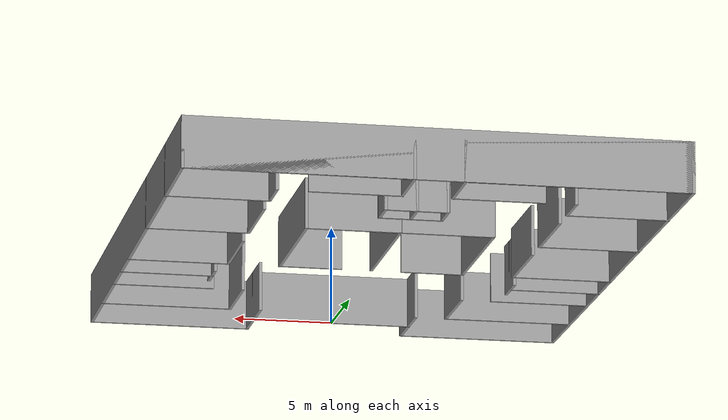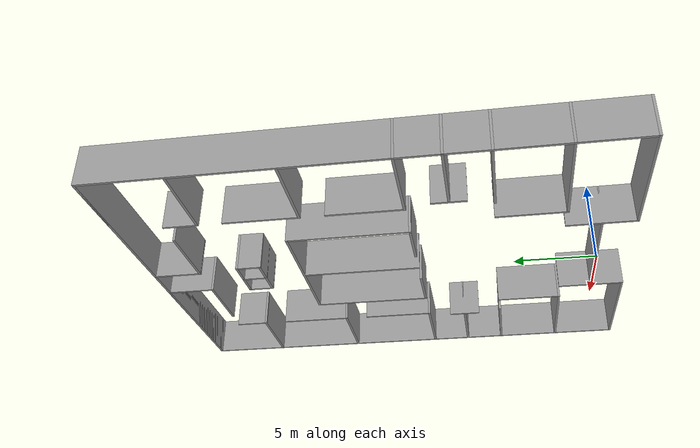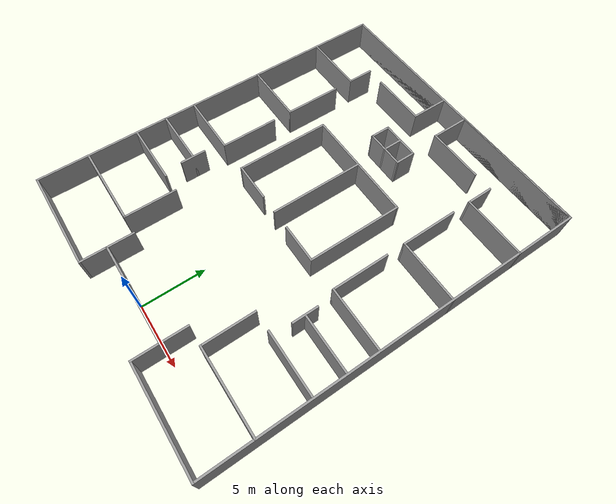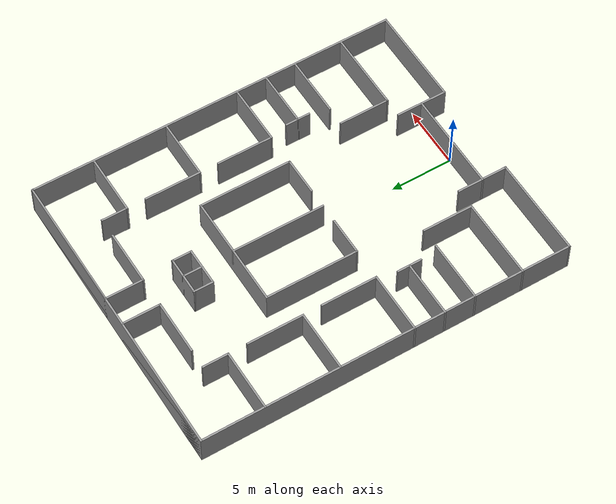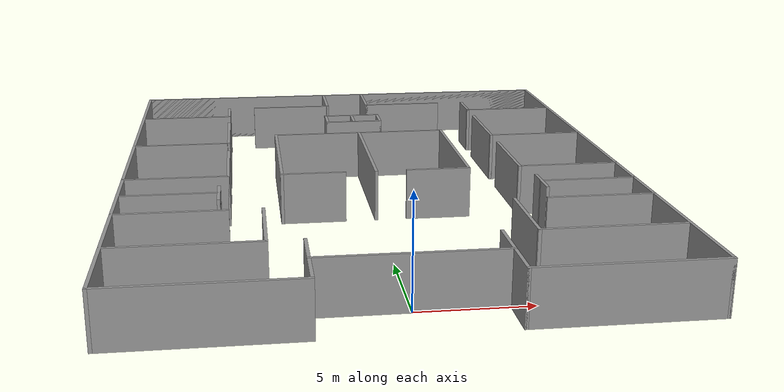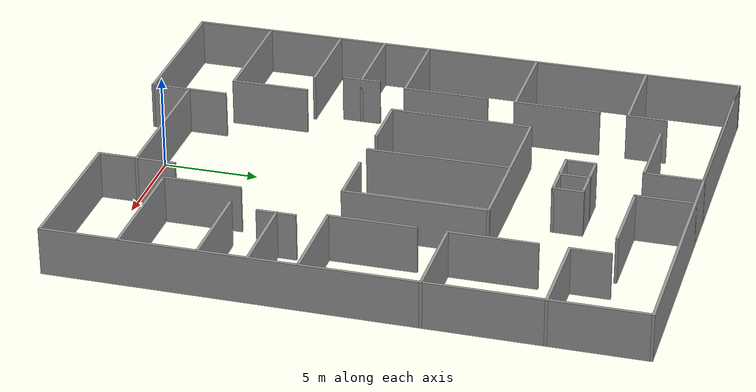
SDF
<?xml version='1.0'?>
<sdf version='1.6'>
  <model name='hospital_03'>
    <pose frame=''>0 13 0 0 -0 0</pose>
    <link name='Wall_1'>
      <collision name='Wall_1_Collision'>
        <geometry>
          <box>
            <size>8.15 0.15 2.5</size>
          </box>
        </geometry>
        <pose frame=''>0 0 1.25 0 -0 0</pose>
      </collision>
      <visual name='Wall_1_Visual'>
        <pose frame=''>0 0 1.25 0 -0 0</pose>
        <geometry>
          <box>
            <size>8.15 0.15 2.5</size>
          </box>
        </geometry>
        <material>
          <script>
            <uri>file://media/materials/scripts/gazebo.material</uri>
            <name>Gazebo/Grey</name>
          </script>
          <ambient>1 1 1 1</ambient>
        </material>
        <meta>
          <layer>0</layer>
        </meta>
      </visual>
      <pose frame=''>0 -13 0 0 -0 0</pose>
    </link>
    <link name='Wall_100'>
      <collision name='Wall_100_Collision'>
        <geometry>
          <box>
            <size>3.15 0.15 2.5</size>
          </box>
        </geometry>
        <pose frame=''>0 0 1.25 0 -0 0</pose>
      </collision>
      <visual name='Wall_100_Visual'>
        <pose frame=''>0 0 1.25 0 -0 0</pose>
        <geometry>
          <box>
            <size>3.15 0.15 2.5</size>
          </box>
        </geometry>
        <material>
          <script>
            <uri>file://media/materials/scripts/gazebo.material</uri>
            <name>Gazebo/Grey</name>
          </script>
          <ambient>1 1 1 1</ambient>
        </material>
        <meta>
          <layer>0</layer>
        </meta>
      </visual>
      <pose frame=''>-3.05 -2 0 0 -0 3.14159</pose>
    </link>
    <link name='Wall_102'>
      <collision name='Wall_102_Collision'>
        <geometry>
          <box>
            <size>7.55 0.15 2.5</size>
          </box>
        </geometry>
        <pose frame=''>0 0 1.25 0 -0 0</pose>
      </collision>
      <visual name='Wall_102_Visual'>
        <pose frame=''>0 0 1.25 0 -0 0</pose>
        <geometry>
          <box>
            <size>7.55 0.15 2.5</size>
          </box>
        </geometry>
        <material>
          <script>
            <uri>file://media/materials/scripts/gazebo.material</uri>
            <name>Gazebo/Grey</name>
          </script>
          <ambient>1 1 1 1</ambient>
        </material>
        <meta>
          <layer>0</layer>
        </meta>
      </visual>
      <pose frame=''>0 1.7 0 0 -0 -1.5708</pose>
    </link>
    <link name='Wall_104'>
      <collision name='Wall_104_Collision'>
        <geometry>
          <box>
            <size>3.15 0.15 2.5</size>
          </box>
        </geometry>
        <pose frame=''>0 0 1.25 0 -0 0</pose>
      </collision>
      <visual name='Wall_104_Visual'>
        <pose frame=''>0 0 1.25 0 -0 0</pose>
        <geometry>
          <box>
            <size>3.15 0.15 2.5</size>
          </box>
        </geometry>
        <material>
          <script>
            <uri>file://media/materials/scripts/gazebo.material</uri>
            <name>Gazebo/Grey</name>
          </script>
          <ambient>1 1 1 1</ambient>
        </material>
        <meta>
          <layer>0</layer>
        </meta>
      </visual>
      <pose frame=''>3.05 -2 0 0 -0 3.14159</pose>
    </link>
    <link name='Wall_106'>
      <collision name='Wall_106_Collision'>
        <geometry>
          <box>
            <size>3.15 0.15 2.5</size>
          </box>
        </geometry>
        <pose frame=''>0 0 1.25 0 -0 0</pose>
      </collision>
      <visual name='Wall_106_Visual'>
        <pose frame=''>0 0 1.25 0 -0 0</pose>
        <geometry>
          <box>
            <size>3.15 0.15 2.5</size>
          </box>
        </geometry>
        <material>
          <script>
            <uri>file://media/materials/scripts/gazebo.material</uri>
            <name>Gazebo/Grey</name>
          </script>
          <ambient>1 1 1 1</ambient>
        </material>
        <meta>
          <layer>0</layer>
        </meta>
      </visual>
      <pose frame=''>0 9.45 0 0 -0 0</pose>
    </link>
    <link name='Wall_108'>
      <collision name='Wall_108_Collision'>
        <geometry>
          <box>
            <size>1.65 0.15 2.5</size>
          </box>
        </geometry>
        <pose frame=''>0 0 1.25 0 -0 0</pose>
      </collision>
      <visual name='Wall_108_Visual'>
        <pose frame=''>0 0 1.25 0 -0 0</pose>
        <geometry>
          <box>
            <size>1.65 0.15 2.5</size>
          </box>
        </geometry>
        <material>
          <script>
            <uri>file://media/materials/scripts/gazebo.material</uri>
            <name>Gazebo/Grey</name>
          </script>
          <ambient>1 1 1 1</ambient>
        </material>
        <meta>
          <layer>0</layer>
        </meta>
      </visual>
      <pose frame=''>-1.5 8.7 0 0 -0 -1.5708</pose>
    </link>
    <link name='Wall_11'>
      <collision name='Wall_11_Collision'>
        <geometry>
          <box>
            <size>4.15 0.15 2.5</size>
          </box>
        </geometry>
        <pose frame=''>0 0 1.25 0 -0 0</pose>
      </collision>
      <visual name='Wall_11_Visual'>
        <pose frame=''>0 0 1.25 0 -0 0</pose>
        <geometry>
          <box>
            <size>4.15 0.15 2.5</size>
          </box>
        </geometry>
        <material>
          <script>
            <uri>file://media/materials/scripts/gazebo.material</uri>
            <name>Gazebo/Grey</name>
          </script>
          <ambient>1 1 1 1</ambient>
        </material>
        <meta>
          <layer>0</layer>
        </meta>
      </visual>
      <pose frame=''>-5.55 -9 0 0 -0 1.5708</pose>
    </link>
    <link name='Wall_110'>
      <collision name='Wall_110_Collision'>
        <geometry>
          <box>
            <size>1.65 0.15 2.5</size>
          </box>
        </geometry>
        <pose frame=''>0 0 1.25 0 -0 0</pose>
      </collision>
      <visual name='Wall_110_Visual'>
        <pose frame=''>0 0 1.25 0 -0 0</pose>
        <geometry>
          <box>
            <size>1.65 0.15 2.5</size>
          </box>
        </geometry>
        <material>
          <script>
            <uri>file://media/materials/scripts/gazebo.material</uri>
            <name>Gazebo/Grey</name>
          </script>
          <ambient>1 1 1 1</ambient>
        </material>
        <meta>
          <layer>0</layer>
        </meta>
      </visual>
      <pose frame=''>1.5 8.7 0 0 -0 -1.5708</pose>
    </link>
    <link name='Wall_112'>
      <collision name='Wall_112_Collision'>
        <geometry>
          <box>
            <size>3.15 0.15 2.5</size>
          </box>
        </geometry>
        <pose frame=''>0 0 1.25 0 -0 0</pose>
      </collision>
      <visual name='Wall_112_Visual'>
        <pose frame=''>0 0 1.25 0 -0 0</pose>
        <geometry>
          <box>
            <size>3.15 0.15 2.5</size>
          </box>
        </geometry>
        <material>
          <script>
            <uri>file://media/materials/scripts/gazebo.material</uri>
            <name>Gazebo/Grey</name>
          </script>
          <ambient>1 1 1 1</ambient>
        </material>
        <meta>
          <layer>0</layer>
        </meta>
      </visual>
      <pose frame=''>0 7.95 0 0 -0 0</pose>
    </link>
    <link name='Wall_114'>
      <collision name='Wall_114_Collision'>
        <geometry>
          <box>
            <size>1.65 0.15 2.5</size>
          </box>
        </geometry>
        <pose frame=''>0 0 1.25 0 -0 0</pose>
      </collision>
      <visual name='Wall_114_Visual'>
        <pose frame=''>0 0 1.25 0 -0 0</pose>
        <geometry>
          <box>
            <size>1.65 0.15 2.5</size>
          </box>
        </geometry>
        <material>
          <script>
            <uri>file://media/materials/scripts/gazebo.material</uri>
            <name>Gazebo/Grey</name>
          </script>
          <ambient>1 1 1 1</ambient>
        </material>
        <meta>
          <layer>0</layer>
        </meta>
      </visual>
      <pose frame=''>0 8.7 0 0 -0 -1.5708</pose>
    </link>
    <link name='Wall_120'>
      <collision name='Wall_120_Collision'>
        <geometry>
          <box>
            <size>24.15 0.15 2.5</size>
          </box>
        </geometry>
        <pose frame=''>0 0 1.25 0 -0 0</pose>
      </collision>
      <visual name='Wall_120_Visual'>
        <pose frame=''>0 0 1.25 0 -0 0</pose>
        <geometry>
          <box>
            <size>24.15 0.15 2.5</size>
          </box>
        </geometry>
        <material>
          <script>
            <uri>file://media/materials/scripts/gazebo.material</uri>
            <name>Gazebo/Grey</name>
          </script>
          <ambient>1 1 1 1</ambient>
        </material>
        <meta>
          <layer>0</layer>
        </meta>
      </visual>
      <pose frame=''>0 15 0 0 -0 0</pose>
    </link>
    <link name='Wall_13'>
      <collision name='Wall_13_Collision'>
        <geometry>
          <box>
            <size>5.05 0.15 2.5</size>
          </box>
        </geometry>
        <pose frame=''>0 0 1.25 0 -0 0</pose>
      </collision>
      <visual name='Wall_13_Visual'>
        <pose frame=''>0 0 1.25 0 -0 0</pose>
        <geometry>
          <box>
            <size>5.05 0.15 2.5</size>
          </box>
        </geometry>
        <material>
          <script>
            <uri>file://media/materials/scripts/gazebo.material</uri>
            <name>Gazebo/Grey</name>
          </script>
          <ambient>1 1 1 1</ambient>
        </material>
        <meta>
          <layer>0</layer>
        </meta>
      </visual>
      <pose frame=''>-9.55 -7 0 0 -0 3.14159</pose>
    </link>
    <link name='Wall_17'>
      <collision name='Wall_17_Collision'>
        <geometry>
          <box>
            <size>2.05 0.15 2.5</size>
          </box>
        </geometry>
        <pose frame=''>0 0 1.25 0 -0 0</pose>
      </collision>
      <visual name='Wall_17_Visual'>
        <pose frame=''>0 0 1.25 0 -0 0</pose>
        <geometry>
          <box>
            <size>2.05 0.15 2.5</size>
          </box>
        </geometry>
        <material>
          <script>
            <uri>file://media/materials/scripts/gazebo.material</uri>
            <name>Gazebo/Grey</name>
          </script>
          <ambient>1 1 1 1</ambient>
        </material>
        <meta>
          <layer>0</layer>
        </meta>
      </visual>
      <pose frame=''>-7.5 -4.5 0 0 -0 1.5708</pose>
    </link>
    <link name='Wall_21'>
      <collision name='Wall_21_Collision'>
        <geometry>
          <box>
            <size>4.65 0.15 2.5</size>
          </box>
        </geometry>
        <pose frame=''>0 0 1.25 0 -0 0</pose>
      </collision>
      <visual name='Wall_21_Visual'>
        <pose frame=''>0 0 1.25 0 -0 0</pose>
        <geometry>
          <box>
            <size>4.65 0.15 2.5</size>
          </box>
        </geometry>
        <material>
          <script>
            <uri>file://media/materials/scripts/gazebo.material</uri>
            <name>Gazebo/Grey</name>
          </script>
          <ambient>1 1 1 1</ambient>
        </material>
        <meta>
          <layer>0</layer>
        </meta>
      </visual>
      <pose frame=''>-9.75 -4.5 0 0 -0 0</pose>
    </link>
    <link name='Wall_23'>
      <collision name='Wall_23_Collision'>
        <geometry>
          <box>
            <size>5.05 0.15 2.5</size>
          </box>
        </geometry>
        <pose frame=''>0 0 1.25 0 -0 0</pose>
      </collision>
      <visual name='Wall_23_Visual'>
        <pose frame=''>0 0 1.25 0 -0 0</pose>
        <geometry>
          <box>
            <size>5.05 0.15 2.5</size>
          </box>
        </geometry>
        <material>
          <script>
            <uri>file://media/materials/scripts/gazebo.material</uri>
            <name>Gazebo/Grey</name>
          </script>
          <ambient>1 1 1 1</ambient>
        </material>
        <meta>
          <layer>0</layer>
        </meta>
      </visual>
      <pose frame=''>-9.55 -2 0 0 -0 0</pose>
    </link>
    <link name='Wall_27'>
      <collision name='Wall_27_Collision'>
        <geometry>
          <box>
            <size>4.6 0.15 2.5</size>
          </box>
        </geometry>
        <pose frame=''>0 0 1.25 0 -0 0</pose>
      </collision>
      <visual name='Wall_27_Visual'>
        <pose frame=''>0 0 1.25 0 -0 0</pose>
        <geometry>
          <box>
            <size>4.6 0.15 2.5</size>
          </box>
        </geometry>
        <material>
          <script>
            <uri>file://media/materials/scripts/gazebo.material</uri>
            <name>Gazebo/Grey</name>
          </script>
          <ambient>1 1 1 1</ambient>
        </material>
        <meta>
          <layer>0</layer>
        </meta>
      </visual>
      <pose frame=''>-7.1 0.225001 0 0 -0 1.5708</pose>
    </link>
    <link name='Wall_29'>
      <collision name='Wall_29_Collision'>
        <geometry>
          <box>
            <size>5.05 0.15 2.5</size>
          </box>
        </geometry>
        <pose frame=''>0 0 1.25 0 -0 0</pose>
      </collision>
      <visual name='Wall_29_Visual'>
        <pose frame=''>0 0 1.25 0 -0 0</pose>
        <geometry>
          <box>
            <size>5.05 0.15 2.5</size>
          </box>
        </geometry>
        <material>
          <script>
            <uri>file://media/materials/scripts/gazebo.material</uri>
            <name>Gazebo/Grey</name>
          </script>
          <ambient>1 1 1 1</ambient>
        </material>
        <meta>
          <layer>0</layer>
        </meta>
      </visual>
      <pose frame=''>-9.55 4 0 0 -0 0</pose>
    </link>
    <link name='Wall_3'>
      <collision name='Wall_3_Collision'>
        <geometry>
          <box>
            <size>4.15 0.15 2.5</size>
          </box>
        </geometry>
        <pose frame=''>0 0 1.25 0 -0 0</pose>
      </collision>
      <visual name='Wall_3_Visual'>
        <pose frame=''>0 0 1.25 0 -0 0</pose>
        <geometry>
          <box>
            <size>4.15 0.15 2.5</size>
          </box>
        </geometry>
        <material>
          <script>
            <uri>file://media/materials/scripts/gazebo.material</uri>
            <name>Gazebo/Grey</name>
          </script>
          <ambient>1 1 1 1</ambient>
        </material>
        <meta>
          <layer>0</layer>
        </meta>
      </visual>
      <pose frame=''>-4 -13 0 0 -0 -1.5708</pose>
    </link>
    <link name='Wall_31'>
      <collision name='Wall_31_Collision'>
        <geometry>
          <box>
            <size>4.6 0.15 2.5</size>
          </box>
        </geometry>
        <pose frame=''>0 0 1.25 0 -0 0</pose>
      </collision>
      <visual name='Wall_31_Visual'>
        <pose frame=''>0 0 1.25 0 -0 0</pose>
        <geometry>
          <box>
            <size>4.6 0.15 2.5</size>
          </box>
        </geometry>
        <material>
          <script>
            <uri>file://media/materials/scripts/gazebo.material</uri>
            <name>Gazebo/Grey</name>
          </script>
          <ambient>1 1 1 1</ambient>
        </material>
        <meta>
          <layer>0</layer>
        </meta>
      </visual>
      <pose frame=''>-7.1 6.225 0 0 -0 1.5708</pose>
    </link>
    <link name='Wall_33'>
      <collision name='Wall_33_Collision'>
        <geometry>
          <box>
            <size>5.05 0.15 2.5</size>
          </box>
        </geometry>
        <pose frame=''>0 0 1.25 0 -0 0</pose>
      </collision>
      <visual name='Wall_33_Visual'>
        <pose frame=''>0 0 1.25 0 -0 0</pose>
        <geometry>
          <box>
            <size>5.05 0.15 2.5</size>
          </box>
        </geometry>
        <material>
          <script>
            <uri>file://media/materials/scripts/gazebo.material</uri>
            <name>Gazebo/Grey</name>
          </script>
          <ambient>1 1 1 1</ambient>
        </material>
        <meta>
          <layer>0</layer>
        </meta>
      </visual>
      <pose frame=''>-9.55 10 0 0 -0 0</pose>
    </link>
    <link name='Wall_37'>
      <collision name='Wall_37_Collision'>
        <geometry>
          <box>
            <size>2.15 0.15 2.5</size>
          </box>
        </geometry>
        <pose frame=''>0 0 1.25 0 -0 0</pose>
      </collision>
      <visual name='Wall_37_Visual'>
        <pose frame=''>0 0 1.25 0 -0 0</pose>
        <geometry>
          <box>
            <size>2.15 0.15 2.5</size>
          </box>
        </geometry>
        <material>
          <script>
            <uri>file://media/materials/scripts/gazebo.material</uri>
            <name>Gazebo/Grey</name>
          </script>
          <ambient>1 1 1 1</ambient>
        </material>
        <meta>
          <layer>0</layer>
        </meta>
      </visual>
      <pose frame=''>-7.1 11 0 0 -0 1.5708</pose>
    </link>
    <link name='Wall_43'>
      <collision name='Wall_43_Collision'>
        <geometry>
          <box>
            <size>30.15 0.15 2.5</size>
          </box>
        </geometry>
        <pose frame=''>0 0 1.25 0 -0 0</pose>
      </collision>
      <visual name='Wall_43_Visual'>
        <pose frame=''>0 0 1.25 0 -0 0</pose>
        <geometry>
          <box>
            <size>30.15 0.15 2.5</size>
          </box>
        </geometry>
        <material>
          <script>
            <uri>file://media/materials/scripts/gazebo.material</uri>
            <name>Gazebo/Grey</name>
          </script>
          <ambient>1 1 1 1</ambient>
        </material>
        <meta>
          <layer>0</layer>
        </meta>
      </visual>
      <pose frame=''>-12 0 0 0 -0 1.5708</pose>
    </link>
    <link name='Wall_49'>
      <collision name='Wall_49_Collision'>
        <geometry>
          <box>
            <size>4.5 0.15 2.5</size>
          </box>
        </geometry>
        <pose frame=''>0 0 1.25 0 -0 0</pose>
      </collision>
      <visual name='Wall_49_Visual'>
        <pose frame=''>0 0 1.25 0 -0 0</pose>
        <geometry>
          <box>
            <size>4.5 0.15 2.5</size>
          </box>
        </geometry>
        <material>
          <script>
            <uri>file://media/materials/scripts/gazebo.material</uri>
            <name>Gazebo/Grey</name>
          </script>
          <ambient>1 1 1 1</ambient>
        </material>
        <meta>
          <layer>0</layer>
        </meta>
      </visual>
      <pose frame=''>-3.375 12 0 0 -0 0</pose>
    </link>
    <link name='Wall_5'>
      <collision name='Wall_5_Collision'>
        <geometry>
          <box>
            <size>8.15 0.15 2.5</size>
          </box>
        </geometry>
        <pose frame=''>0 0 1.25 0 -0 0</pose>
      </collision>
      <visual name='Wall_5_Visual'>
        <pose frame=''>0 0 1.25 0 -0 0</pose>
        <geometry>
          <box>
            <size>8.15 0.15 2.5</size>
          </box>
        </geometry>
        <material>
          <script>
            <uri>file://media/materials/scripts/gazebo.material</uri>
            <name>Gazebo/Grey</name>
          </script>
          <ambient>1 1 1 1</ambient>
        </material>
        <meta>
          <layer>0</layer>
        </meta>
      </visual>
      <pose frame=''>-8 -15 0 0 -0 3.14159</pose>
    </link>
    <link name='Wall_51'>
      <collision name='Wall_51_Collision'>
        <geometry>
          <box>
            <size>4.5 0.15 2.5</size>
          </box>
        </geometry>
        <pose frame=''>0 0 1.25 0 -0 0</pose>
      </collision>
      <visual name='Wall_51_Visual'>
        <pose frame=''>0 0 1.25 0 -0 0</pose>
        <geometry>
          <box>
            <size>4.5 0.15 2.5</size>
          </box>
        </geometry>
        <material>
          <script>
            <uri>file://media/materials/scripts/gazebo.material</uri>
            <name>Gazebo/Grey</name>
          </script>
          <ambient>1 1 1 1</ambient>
        </material>
        <meta>
          <layer>0</layer>
        </meta>
      </visual>
      <pose frame=''>3.375 12 0 0 -0 0</pose>
    </link>
    <link name='Wall_58'>
      <collision name='Wall_58_Collision'>
        <geometry>
          <box>
            <size>3.15 0.15 2.5</size>
          </box>
        </geometry>
        <pose frame=''>0 0 1.25 0 -0 0</pose>
      </collision>
      <visual name='Wall_58_Visual'>
        <pose frame=''>0 0 1.25 0 -0 0</pose>
        <geometry>
          <box>
            <size>3.15 0.15 2.5</size>
          </box>
        </geometry>
        <material>
          <script>
            <uri>file://media/materials/scripts/gazebo.material</uri>
            <name>Gazebo/Grey</name>
          </script>
          <ambient>1 1 1 1</ambient>
        </material>
        <meta>
          <layer>0</layer>
        </meta>
      </visual>
      <pose frame=''>-1.2 13.5 0 0 -0 1.5708</pose>
    </link>
    <link name='Wall_60'>
      <collision name='Wall_60_Collision'>
        <geometry>
          <box>
            <size>10.95 0.15 2.5</size>
          </box>
        </geometry>
        <pose frame=''>0 0 1.25 0 -0 0</pose>
      </collision>
      <visual name='Wall_60_Visual'>
        <pose frame=''>0 0 1.25 0 -0 0</pose>
        <geometry>
          <box>
            <size>10.95 0.15 2.5</size>
          </box>
        </geometry>
        <material>
          <script>
            <uri>file://media/materials/scripts/gazebo.material</uri>
            <name>Gazebo/Grey</name>
          </script>
          <ambient>1 1 1 1</ambient>
        </material>
        <meta>
          <layer>0</layer>
        </meta>
      </visual>
      <pose frame=''>-6.6 15 0 0 -0 0</pose>
    </link>
    <link name='Wall_62'>
      <collision name='Wall_62_Collision'>
        <geometry>
          <box>
            <size>4.15 0.15 2.5</size>
          </box>
        </geometry>
        <pose frame=''>0 0 1.25 0 -0 0</pose>
      </collision>
      <visual name='Wall_62_Visual'>
        <pose frame=''>0 0 1.25 0 -0 0</pose>
        <geometry>
          <box>
            <size>4.15 0.15 2.5</size>
          </box>
        </geometry>
        <material>
          <script>
            <uri>file://media/materials/scripts/gazebo.material</uri>
            <name>Gazebo/Grey</name>
          </script>
          <ambient>1 1 1 1</ambient>
        </material>
        <meta>
          <layer>0</layer>
        </meta>
      </visual>
      <pose frame=''>4 -13 0 0 -0 -1.5708</pose>
    </link>
    <link name='Wall_64'>
      <collision name='Wall_64_Collision'>
        <geometry>
          <box>
            <size>8.15 0.15 2.5</size>
          </box>
        </geometry>
        <pose frame=''>0 0 1.25 0 -0 0</pose>
      </collision>
      <visual name='Wall_64_Visual'>
        <pose frame=''>0 0 1.25 0 -0 0</pose>
        <geometry>
          <box>
            <size>8.15 0.15 2.5</size>
          </box>
        </geometry>
        <material>
          <script>
            <uri>file://media/materials/scripts/gazebo.material</uri>
            <name>Gazebo/Grey</name>
          </script>
          <ambient>1 1 1 1</ambient>
        </material>
        <meta>
          <layer>0</layer>
        </meta>
      </visual>
      <pose frame=''>8 -15 0 0 -0 0</pose>
    </link>
    <link name='Wall_66'>
      <collision name='Wall_66_Collision'>
        <geometry>
          <box>
            <size>30.15 0.15 2.5</size>
          </box>
        </geometry>
        <pose frame=''>0 0 1.25 0 -0 0</pose>
      </collision>
      <visual name='Wall_66_Visual'>
        <pose frame=''>0 0 1.25 0 -0 0</pose>
        <geometry>
          <box>
            <size>30.15 0.15 2.5</size>
          </box>
        </geometry>
        <material>
          <script>
            <uri>file://media/materials/scripts/gazebo.material</uri>
            <name>Gazebo/Grey</name>
          </script>
          <ambient>1 1 1 1</ambient>
        </material>
        <meta>
          <layer>0</layer>
        </meta>
      </visual>
      <pose frame=''>12 0 0 0 -0 1.5708</pose>
    </link>
    <link name='Wall_68'>
      <collision name='Wall_68_Collision'>
        <geometry>
          <box>
            <size>6.6 0.15 2.5</size>
          </box>
        </geometry>
        <pose frame=''>0 0 1.25 0 -0 0</pose>
      </collision>
      <visual name='Wall_68_Visual'>
        <pose frame=''>0 0 1.25 0 -0 0</pose>
        <geometry>
          <box>
            <size>6.6 0.15 2.5</size>
          </box>
        </geometry>
        <material>
          <script>
            <uri>file://media/materials/scripts/gazebo.material</uri>
            <name>Gazebo/Grey</name>
          </script>
          <ambient>1 1 1 1</ambient>
        </material>
        <meta>
          <layer>0</layer>
        </meta>
      </visual>
      <pose frame=''>8.775 -11 0 0 -0 0</pose>
    </link>
    <link name='Wall_7'>
      <collision name='Wall_7_Collision'>
        <geometry>
          <box>
            <size>6.6 0.15 2.5</size>
          </box>
        </geometry>
        <pose frame=''>0 0 1.25 0 -0 0</pose>
      </collision>
      <visual name='Wall_7_Visual'>
        <pose frame=''>0 0 1.25 0 -0 0</pose>
        <geometry>
          <box>
            <size>6.6 0.15 2.5</size>
          </box>
        </geometry>
        <material>
          <script>
            <uri>file://media/materials/scripts/gazebo.material</uri>
            <name>Gazebo/Grey</name>
          </script>
          <ambient>1 1 1 1</ambient>
        </material>
        <meta>
          <layer>0</layer>
        </meta>
      </visual>
      <pose frame=''>-8.775 -11 0 0 -0 3.14159</pose>
    </link>
    <link name='Wall_70'>
      <collision name='Wall_70_Collision'>
        <geometry>
          <box>
            <size>4.15 0.15 2.5</size>
          </box>
        </geometry>
        <pose frame=''>0 0 1.25 0 -0 0</pose>
      </collision>
      <visual name='Wall_70_Visual'>
        <pose frame=''>0 0 1.25 0 -0 0</pose>
        <geometry>
          <box>
            <size>4.15 0.15 2.5</size>
          </box>
        </geometry>
        <material>
          <script>
            <uri>file://media/materials/scripts/gazebo.material</uri>
            <name>Gazebo/Grey</name>
          </script>
          <ambient>1 1 1 1</ambient>
        </material>
        <meta>
          <layer>0</layer>
        </meta>
      </visual>
      <pose frame=''>5.55 -9 0 0 -0 1.5708</pose>
    </link>
    <link name='Wall_72'>
      <collision name='Wall_72_Collision'>
        <geometry>
          <box>
            <size>5.05 0.15 2.5</size>
          </box>
        </geometry>
        <pose frame=''>0 0 1.25 0 -0 0</pose>
      </collision>
      <visual name='Wall_72_Visual'>
        <pose frame=''>0 0 1.25 0 -0 0</pose>
        <geometry>
          <box>
            <size>5.05 0.15 2.5</size>
          </box>
        </geometry>
        <material>
          <script>
            <uri>file://media/materials/scripts/gazebo.material</uri>
            <name>Gazebo/Grey</name>
          </script>
          <ambient>1 1 1 1</ambient>
        </material>
        <meta>
          <layer>0</layer>
        </meta>
      </visual>
      <pose frame=''>9.55 -7 0 0 -0 0</pose>
    </link>
    <link name='Wall_74'>
      <collision name='Wall_74_Collision'>
        <geometry>
          <box>
            <size>2.05 0.15 2.5</size>
          </box>
        </geometry>
        <pose frame=''>0 0 1.25 0 -0 0</pose>
      </collision>
      <visual name='Wall_74_Visual'>
        <pose frame=''>0 0 1.25 0 -0 0</pose>
        <geometry>
          <box>
            <size>2.05 0.15 2.5</size>
          </box>
        </geometry>
        <material>
          <script>
            <uri>file://media/materials/scripts/gazebo.material</uri>
            <name>Gazebo/Grey</name>
          </script>
          <ambient>1 1 1 1</ambient>
        </material>
        <meta>
          <layer>0</layer>
        </meta>
      </visual>
      <pose frame=''>7.5 -4.5 0 0 -0 1.5708</pose>
    </link>
    <link name='Wall_76'>
      <collision name='Wall_76_Collision'>
        <geometry>
          <box>
            <size>4.65 0.15 2.5</size>
          </box>
        </geometry>
        <pose frame=''>0 0 1.25 0 -0 0</pose>
      </collision>
      <visual name='Wall_76_Visual'>
        <pose frame=''>0 0 1.25 0 -0 0</pose>
        <geometry>
          <box>
            <size>4.65 0.15 2.5</size>
          </box>
        </geometry>
        <material>
          <script>
            <uri>file://media/materials/scripts/gazebo.material</uri>
            <name>Gazebo/Grey</name>
          </script>
          <ambient>1 1 1 1</ambient>
        </material>
        <meta>
          <layer>0</layer>
        </meta>
      </visual>
      <pose frame=''>9.75 -4.5 0 0 -0 0</pose>
    </link>
    <link name='Wall_78'>
      <collision name='Wall_78_Collision'>
        <geometry>
          <box>
            <size>5.05 0.15 2.5</size>
          </box>
        </geometry>
        <pose frame=''>0 0 1.25 0 -0 0</pose>
      </collision>
      <visual name='Wall_78_Visual'>
        <pose frame=''>0 0 1.25 0 -0 0</pose>
        <geometry>
          <box>
            <size>5.05 0.15 2.5</size>
          </box>
        </geometry>
        <material>
          <script>
            <uri>file://media/materials/scripts/gazebo.material</uri>
            <name>Gazebo/Grey</name>
          </script>
          <ambient>1 1 1 1</ambient>
        </material>
        <meta>
          <layer>0</layer>
        </meta>
      </visual>
      <pose frame=''>9.55 -2 0 0 -0 0</pose>
    </link>
    <link name='Wall_80'>
      <collision name='Wall_80_Collision'>
        <geometry>
          <box>
            <size>4.6 0.15 2.5</size>
          </box>
        </geometry>
        <pose frame=''>0 0 1.25 0 -0 0</pose>
      </collision>
      <visual name='Wall_80_Visual'>
        <pose frame=''>0 0 1.25 0 -0 0</pose>
        <geometry>
          <box>
            <size>4.6 0.15 2.5</size>
          </box>
        </geometry>
        <material>
          <script>
            <uri>file://media/materials/scripts/gazebo.material</uri>
            <name>Gazebo/Grey</name>
          </script>
          <ambient>1 1 1 1</ambient>
        </material>
        <meta>
          <layer>0</layer>
        </meta>
      </visual>
      <pose frame=''>7.1 0.225001 0 0 -0 1.5708</pose>
    </link>
    <link name='Wall_82'>
      <collision name='Wall_82_Collision'>
        <geometry>
          <box>
            <size>5.05 0.15 2.5</size>
          </box>
        </geometry>
        <pose frame=''>0 0 1.25 0 -0 0</pose>
      </collision>
      <visual name='Wall_82_Visual'>
        <pose frame=''>0 0 1.25 0 -0 0</pose>
        <geometry>
          <box>
            <size>5.05 0.15 2.5</size>
          </box>
        </geometry>
        <material>
          <script>
            <uri>file://media/materials/scripts/gazebo.material</uri>
            <name>Gazebo/Grey</name>
          </script>
          <ambient>1 1 1 1</ambient>
        </material>
        <meta>
          <layer>0</layer>
        </meta>
      </visual>
      <pose frame=''>9.55 4 0 0 -0 0</pose>
    </link>
    <link name='Wall_84'>
      <collision name='Wall_84_Collision'>
        <geometry>
          <box>
            <size>4.6 0.15 2.5</size>
          </box>
        </geometry>
        <pose frame=''>0 0 1.25 0 -0 0</pose>
      </collision>
      <visual name='Wall_84_Visual'>
        <pose frame=''>0 0 1.25 0 -0 0</pose>
        <geometry>
          <box>
            <size>4.6 0.15 2.5</size>
          </box>
        </geometry>
        <material>
          <script>
            <uri>file://media/materials/scripts/gazebo.material</uri>
            <name>Gazebo/Grey</name>
          </script>
          <ambient>1 1 1 1</ambient>
        </material>
        <meta>
          <layer>0</layer>
        </meta>
      </visual>
      <pose frame=''>7.1 6.225 0 0 -0 1.5708</pose>
    </link>
    <link name='Wall_86'>
      <collision name='Wall_86_Collision'>
        <geometry>
          <box>
            <size>5.05 0.15 2.5</size>
          </box>
        </geometry>
        <pose frame=''>0 0 1.25 0 -0 0</pose>
      </collision>
      <visual name='Wall_86_Visual'>
        <pose frame=''>0 0 1.25 0 -0 0</pose>
        <geometry>
          <box>
            <size>5.05 0.15 2.5</size>
          </box>
        </geometry>
        <material>
          <script>
            <uri>file://media/materials/scripts/gazebo.material</uri>
            <name>Gazebo/Grey</name>
          </script>
          <ambient>1 1 1 1</ambient>
        </material>
        <meta>
          <layer>0</layer>
        </meta>
      </visual>
      <pose frame=''>9.55 10 0 0 -0 3.14159</pose>
    </link>
    <link name='Wall_88'>
      <collision name='Wall_88_Collision'>
        <geometry>
          <box>
            <size>2.15 0.15 2.5</size>
          </box>
        </geometry>
        <pose frame=''>0 0 1.25 0 -0 0</pose>
      </collision>
      <visual name='Wall_88_Visual'>
        <pose frame=''>0 0 1.25 0 -0 0</pose>
        <geometry>
          <box>
            <size>2.15 0.15 2.5</size>
          </box>
        </geometry>
        <material>
          <script>
            <uri>file://media/materials/scripts/gazebo.material</uri>
            <name>Gazebo/Grey</name>
          </script>
          <ambient>1 1 1 1</ambient>
        </material>
        <meta>
          <layer>0</layer>
        </meta>
      </visual>
      <pose frame=''>7.1 11 0 0 -0 1.5708</pose>
    </link>
    <link name='Wall_90'>
      <collision name='Wall_90_Collision'>
        <geometry>
          <box>
            <size>3.15 0.15 2.5</size>
          </box>
        </geometry>
        <pose frame=''>0 0 1.25 0 -0 0</pose>
      </collision>
      <visual name='Wall_90_Visual'>
        <pose frame=''>0 0 1.25 0 -0 0</pose>
        <geometry>
          <box>
            <size>3.15 0.15 2.5</size>
          </box>
        </geometry>
        <material>
          <script>
            <uri>file://media/materials/scripts/gazebo.material</uri>
            <name>Gazebo/Grey</name>
          </script>
          <ambient>1 1 1 1</ambient>
        </material>
        <meta>
          <layer>0</layer>
        </meta>
      </visual>
      <pose frame=''>1.2 13.5 0 0 -0 1.5708</pose>
    </link>
    <link name='Wall_92'>
      <collision name='Wall_92_Collision'>
        <geometry>
          <box>
            <size>10.95 0.15 2.5</size>
          </box>
        </geometry>
        <pose frame=''>0 0 1.25 0 -0 0</pose>
      </collision>
      <visual name='Wall_92_Visual'>
        <pose frame=''>0 0 1.25 0 -0 0</pose>
        <geometry>
          <box>
            <size>10.95 0.15 2.5</size>
          </box>
        </geometry>
        <material>
          <script>
            <uri>file://media/materials/scripts/gazebo.material</uri>
            <name>Gazebo/Grey</name>
          </script>
          <ambient>1 1 1 1</ambient>
        </material>
        <meta>
          <layer>0</layer>
        </meta>
      </visual>
      <pose frame=''>6.6 15 0 0 -0 0</pose>
    </link>
    <link name='Wall_94'>
      <collision name='Wall_94_Collision'>
        <geometry>
          <box>
            <size>7.55 0.15 2.5</size>
          </box>
        </geometry>
        <pose frame=''>0 0 1.25 0 -0 0</pose>
      </collision>
      <visual name='Wall_94_Visual'>
        <pose frame=''>0 0 1.25 0 -0 0</pose>
        <geometry>
          <box>
            <size>7.55 0.15 2.5</size>
          </box>
        </geometry>
        <material>
          <script>
            <uri>file://media/materials/scripts/gazebo.material</uri>
            <name>Gazebo/Grey</name>
          </script>
          <ambient>1 1 1 1</ambient>
        </material>
        <meta>
          <layer>0</layer>
        </meta>
      </visual>
      <pose frame=''>-4.55 1.7 0 0 -0 1.5708</pose>
    </link>
    <link name='Wall_96'>
      <collision name='Wall_96_Collision'>
        <geometry>
          <box>
            <size>7.55 0.15 2.5</size>
          </box>
        </geometry>
        <pose frame=''>0 0 1.25 0 -0 0</pose>
      </collision>
      <visual name='Wall_96_Visual'>
        <pose frame=''>0 0 1.25 0 -0 0</pose>
        <geometry>
          <box>
            <size>7.55 0.15 2.5</size>
          </box>
        </geometry>
        <material>
          <script>
            <uri>file://media/materials/scripts/gazebo.material</uri>
            <name>Gazebo/Grey</name>
          </script>
          <ambient>1 1 1 1</ambient>
        </material>
        <meta>
          <layer>0</layer>
        </meta>
      </visual>
      <pose frame=''>4.55 1.7 0 0 -0 1.5708</pose>
    </link>
    <link name='Wall_98'>
      <collision name='Wall_98_Collision'>
        <geometry>
          <box>
            <size>9.25 0.15 2.5</size>
          </box>
        </geometry>
        <pose frame=''>0 0 1.25 0 -0 0</pose>
      </collision>
      <visual name='Wall_98_Visual'>
        <pose frame=''>0 0 1.25 0 -0 0</pose>
        <geometry>
          <box>
            <size>9.25 0.15 2.5</size>
          </box>
        </geometry>
        <material>
          <script>
            <uri>file://media/materials/scripts/gazebo.material</uri>
            <name>Gazebo/Grey</name>
          </script>
          <ambient>1 1 1 1</ambient>
        </material>
        <meta>
          <layer>0</layer>
        </meta>
      </visual>
      <pose frame=''>0 5.4 0 0 -0 0</pose>
    </link>
    <static>1</static>
  </model>
</sdf>
